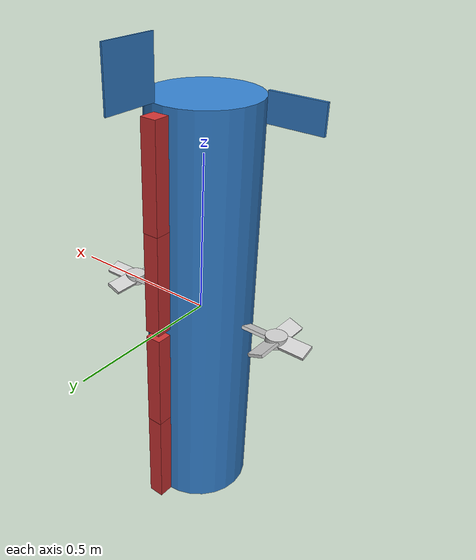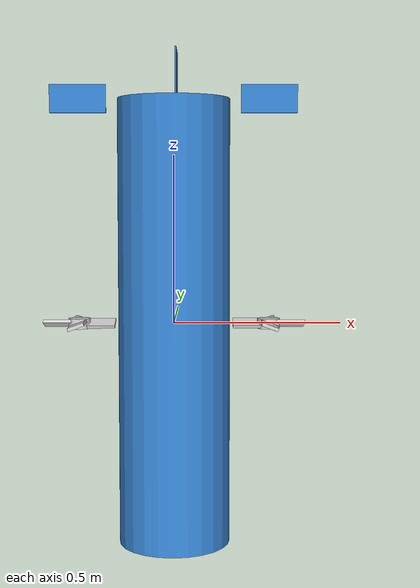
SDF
<?xml version="1.0" ?>
<sdf version="1.6">
  <model name="submarine">

    <!-- 0. ГЛОБАЛЬНАЯ ПОЗИЦИЯ И ОРИЕНТАЦИЯ         -->
    <!-- Поворот на 90° по X и 90° по Y задаёт начальную ориентацию в мире -->
    <pose>0 0 0 1.5707963267948966 1.5707963267948966 0</pose>

    <!-- 1. ОСНОВНОЙ КОРПУС (BODY)                  -->
    <link name="body">
      <pose>0 0 0 0 1.5707963267948966 0</pose>
      <inertial>
        <pose>0.51 0 -0.02 0 0 0</pose>
        <mass>118.2</mass>
        <inertia>
          <ixx>1.64</ixx>
          <iyy>18.33</iyy>
          <izz>18.33</izz>
          <ixy>0</ixy>
          <ixz>0</ixz>
          <iyz>0</iyz>
        </inertia>
        <fluid_added_mass>
          <xx>5.8</xx>
          <yy>116.0</yy>
          <zz>116.0</zz>
          <pp>0.7</pp>
          <qq>3.7</qq>
          <rr>3.7</rr>
        </fluid_added_mass>
      </inertial>

      <visual name="body_visual">
        <geometry>
          <cylinder>
            <radius>0.1666667</radius>
            <length>1.3333333</length>
          </cylinder>
        </geometry>
        <material>
          <ambient>0.2 0.5 0.8 1</ambient>
        </material>
      </visual>

      <collision name="body_collision">
        <geometry>
          <cylinder>
            <radius>0.1666667</radius>
            <length>1.3333333</length>
          </cylinder>
        </geometry>
      </collision>

      <sensor name="imu_sensor" type="imu">
        <always_on>1</always_on>
        <update_rate>100</update_rate>
        <topic>/model/submarine/imu</topic>
      </sensor>

      <sensor name="pressure_sensor" type="air_pressure">
        <always_on>1</always_on>
        <update_rate>50</update_rate>
        <topic>/sub_press</topic>
      </sensor>
    </link>

    <!-- 2. ЛЕВЫЙ ПРОПЕЛЛЕР И ЕГО ФИЗИКА            -->
    <link name="left_propeller">
      <pose>0 0.2833333 0 0 1.5708 0</pose>
      <inertial>
        <mass>0.101</mass>
        <inertia>
          <ixx>0.0000592</ixx>
          <iyy>0.0000592</iyy>
          <izz>0.000117</izz>
          <ixy>0</ixy>
          <ixz>0</ixz>
          <iyz>0</iyz>
        </inertia>
      </inertial>

      <!-- Визуализация лопастей и ступицы -->
      <visual name="lp_cyl"><geometry><cylinder><radius>0.0333</radius><length>0.03</length></cylinder></geometry><material><ambient>0.8 0.8 0.8 1</ambient></material></visual>
      <visual name="lp_b1"><pose>0.057 0 0 -0.349066 0 0</pose><geometry><box><size>0.1 0.05 0.01</size></box></geometry><material><ambient>0.8 0.8 0.8 1</ambient></material></visual>
      <visual name="lp_b2"><pose>-0.057 0 0 0.349066 0 0</pose><geometry><box><size>0.1 0.05 0.01</size></box></geometry><material><ambient>0.8 0.8 0.8 1</ambient></material></visual>
      <visual name="lp_b3"><pose>0 0.057 0 0 -0.349066 0</pose><geometry><box><size>0.05 0.1 0.01</size></box></geometry><material><ambient>0.8 0.8 0.8 1</ambient></material></visual>
      <visual name="lp_b4"><pose>0 -0.057 0 0 0.349066  0</pose><geometry><box><size>0.05 0.1 0.01</size></box></geometry><material><ambient>0.8 0.8 0.8 1</ambient></material></visual>

      <!-- Коллизии лопастей -->
      <collision name="lp_c1"><pose>0.057 0 0 -0.349066 0 0</pose><geometry><box><size>0.1 0.05 0.01</size></box></geometry></collision>
      <collision name="lp_c2"><pose>-0.057 0 0 0.349066 0 0</pose><geometry><box><size>0.1 0.05 0.01</size></box></geometry></collision>
      <collision name="lp_c3"><pose>0 0.057 0 0 -0.349066 0</pose><geometry><box><size>0.05 0.1 0.01</size></box></geometry></collision>
      <collision name="lp_c4"><pose>0 -0.057 0 0 0.349066 0</pose><geometry><box><size>0.05 0.1 0.01</size></box></geometry></collision>
    </link>

    <joint name="left_propeller_joint" type="revolute">
      <parent>body</parent>
      <child>left_propeller</child>
      <axis>
        <xyz>1 0 0</xyz>
        <use_parent_model_frame>1</use_parent_model_frame>
        <limit><lower>-1e12</lower><upper>1e12</upper></limit>
        <dynamics><damping>0.5</damping></dynamics>
      </axis>
    </joint>

    <!-- Плагин создания тяги на суставе -->
    <plugin filename="gz-sim-apply-joint-force-system" name="gz::sim::systems::ApplyJointForce">
      <joint_name>left_propeller_joint</joint_name>
    </plugin>

    <!-- Левый #1: cp=(+X), OK -->
    <plugin filename="gz-sim-lift-drag-system" name="gz::sim::systems::LiftDrag">
      <air_density>1000</air_density>
      <cla>1.2535816618911175</cla>
      <cla_stall>-1.4326647564469914</cla_stall>
      <cda>0.02</cda>
      <cda_stall>1.4326647564469914</cda_stall>
      <alpha_stall>1.396</alpha_stall>
      <area>0.007677</area>
      <upward>0 -0.7071067811865476 -0.7071067811865475</upward>
      <forward>0 -0.7071067811865475 0.7071067811865476</forward>
      <link_name>left_propeller</link_name>
      <cp>0.05833 0 0</cp>
    </plugin>

    <!-- Левый #2: cp=(-Y), OK -->
    <plugin filename="gz-sim-lift-drag-system" name="gz::sim::systems::LiftDrag">
      <air_density>1000</air_density>
      <cla>1.2535816618911175</cla>
      <cla_stall>-1.4326647564469914</cla_stall>
      <cda>0.02</cda>
      <cda_stall>1.4326647564469914</cda_stall>
      <alpha_stall>1.396</alpha_stall>
      <area>0.007677</area>
      <upward>-0.7071067811865475 0 -0.7071067811865476</upward>
      <forward>-0.7071067811865476 0 0.7071067811865475</forward>
      <link_name>left_propeller</link_name>
      <cp>0 -0.05833 0</cp>
    </plugin>

    <!-- Левый #3: cp=(-X), forward ИСПРАВЛЕН -->
    <plugin filename="gz-sim-lift-drag-system" name="gz::sim::systems::LiftDrag">
      <air_density>1000</air_density>
      <cla>1.2535816618911175</cla>
      <cla_stall>-1.4326647564469914</cla_stall>
      <cda>0.02</cda>
      <cda_stall>1.4326647564469914</cda_stall>
      <alpha_stall>1.396</alpha_stall>
      <area>0.007677</area>
      <upward>0 0.7071067811865475 -0.7071067811865476</upward>
      <forward>0 0.7071067811865476 0.7071067811865475</forward>
      <link_name>left_propeller</link_name>
      <cp>-0.05833 0 0</cp>
    </plugin>

    <!-- Левый #4: cp=(+Y), OK -->
    <plugin filename="gz-sim-lift-drag-system" name="gz::sim::systems::LiftDrag">
      <air_density>1000</air_density>
      <cla>1.2535816618911175</cla>
      <cla_stall>-1.4326647564469914</cla_stall>
      <cda>0.02</cda>
      <cda_stall>1.4326647564469914</cda_stall>
      <alpha_stall>1.396</alpha_stall>
      <area>0.007677</area>
      <upward>0.7071067811865476 0 -0.7071067811865475</upward>
      <forward>0.7071067811865475 0 0.7071067811865476</forward>
      <link_name>left_propeller</link_name>
      <cp>0 0.05833 0</cp>
    </plugin>

    <!-- 3. ПРАВЫЙ ПРОПЕЛЛЕР И ЕГО ФИЗИКА           -->
    <link name="right_propeller">
      <pose>0 -0.2833333 0 0 1.5708 0</pose>
      <inertial>
        <mass>0.101</mass>
        <inertia>
          <ixx>0.0000592</ixx>
          <iyy>0.0000592</iyy>
          <izz>0.000117</izz>
          <ixy>0</ixy>
          <ixz>0</ixz>
          <iyz>0</iyz>
        </inertia>
      </inertial>

      <visual name="rp_cyl"><geometry><cylinder><radius>0.0333</radius><length>0.03</length></cylinder></geometry><material><ambient>0.8 0.8 0.8 1</ambient></material></visual>
      <visual name="rp_b1"><pose>0.057 0 0 0.349066 0 0</pose><geometry><box><size>0.1 0.05 0.01</size></box></geometry><material><ambient>0.8 0.8 0.8 1</ambient></material></visual>
      <visual name="rp_b2"><pose>-0.057 0 0 -0.349066 0 0</pose><geometry><box><size>0.1 0.05 0.01</size></box></geometry><material><ambient>0.8 0.8 0.8 1</ambient></material></visual>
      <visual name="rp_b3"><pose>0 0.057 0 0 0.349066 0</pose><geometry><box><size>0.05 0.1 0.01</size></box></geometry><material><ambient>0.8 0.8 0.8 1</ambient></material></visual>
      <visual name="rp_b4"><pose>0 -0.057 0 0 -0.349066 0</pose><geometry><box><size>0.05 0.1 0.01</size></box></geometry><material><ambient>0.8 0.8 0.8 1</ambient></material></visual>

      <collision name="rp_c1"><pose>0.057 0 0 0.349066 0 0</pose><geometry><box><size>0.1 0.05 0.01</size></box></geometry></collision>
      <collision name="rp_c2"><pose>-0.057 0 0 -0.349066 0 0</pose><geometry><box><size>0.1 0.05 0.01</size></box></geometry></collision>
      <collision name="rp_c3"><pose>0 0.057 0 0 0.349066 0</pose><geometry><box><size>0.05 0.1 0.01</size></box></geometry></collision>
      <collision name="rp_c4"><pose>0 -0.057 0 0 -0.349066 0</pose><geometry><box><size>0.05 0.1 0.01</size></box></geometry></collision>
    </link>

    <joint name="right_propeller_joint" type="revolute">
      <parent>body</parent>
      <child>right_propeller</child>
      <axis>
        <xyz>-1 0 0</xyz>
        <use_parent_model_frame>1</use_parent_model_frame>
        <limit><lower>-1e12</lower><upper>1e12</upper></limit>
        <dynamics><damping>0.5</damping></dynamics>
      </axis>
    </joint>

    <plugin filename="gz-sim-apply-joint-force-system" name="gz::sim::systems::ApplyJointForce">
      <joint_name>right_propeller_joint</joint_name>
    </plugin>

        <!-- Гидродинамика 4-х лопастей правого винта -->

    <!-- Правый #1: cp=(+X), OK -->
    <plugin filename="gz-sim-lift-drag-system" name="gz::sim::systems::LiftDrag">
      <air_density>1000</air_density>
      <cla>1.2535816618911175</cla>
      <cla_stall>-1.4326647564469914</cla_stall>
      <cda>0.02</cda>
      <cda_stall>1.4326647564469914</cda_stall>
      <alpha_stall>1.396</alpha_stall>
      <area>0.007677</area>
      <upward>0 0.7071067811865476 -0.7071067811865475</upward>
      <forward>0 0.7071067811865475 0.7071067811865476</forward>
      <link_name>right_propeller</link_name>
      <cp>0.05833 0 0</cp>
    </plugin>

    <!-- Правый #2: cp=(-Y), forward ИСПРАВЛЕН -->
    <plugin filename="gz-sim-lift-drag-system" name="gz::sim::systems::LiftDrag">
      <air_density>1000</air_density>
      <cla>1.2535816618911175</cla>
      <cla_stall>-1.4326647564469914</cla_stall>
      <cda>0.02</cda>
      <cda_stall>1.4326647564469914</cda_stall>
      <alpha_stall>1.396</alpha_stall>
      <area>0.007677</area>
      <upward>0.7071067811865475 0 -0.7071067811865476</upward>
      <forward>0.7071067811865476 0 0.7071067811865475</forward>
      <link_name>right_propeller</link_name>
      <cp>0 -0.05833 0</cp>
    </plugin>

    <!-- Правый #3: cp=(-X), forward ИСПРАВЛЕН -->
    <plugin filename="gz-sim-lift-drag-system" name="gz::sim::systems::LiftDrag">
      <air_density>1000</air_density>
      <cla>1.2535816618911175</cla>
      <cla_stall>-1.4326647564469914</cla_stall>
      <cda>0.02</cda>
      <cda_stall>1.4326647564469914</cda_stall>
      <alpha_stall>1.396</alpha_stall>
      <area>0.007677</area>
      <upward>0 -0.7071067811865475 -0.7071067811865476</upward>
      <forward>0 -0.7071067811865476 0.7071067811865475</forward>
      <link_name>right_propeller</link_name>
      <cp>-0.05833 0 0</cp>
    </plugin>

    <!-- Правый #4: cp=(+Y), forward ИСПРАВЛЕН -->
    <plugin filename="gz-sim-lift-drag-system" name="gz::sim::systems::LiftDrag">
      <air_density>1000</air_density>
      <cla>1.2535816618911175</cla>
      <cla_stall>-1.4326647564469914</cla_stall>
      <cda>0.02</cda>
      <cda_stall>1.4326647564469914</cda_stall>
      <alpha_stall>1.396</alpha_stall>
      <area>0.007677</area>
      <upward>-0.7071067811865476 0 -0.7071067811865475</upward>
      <forward>-0.7071067811865475 0 0.7071067811865476</forward>
      <link_name>right_propeller</link_name>
      <cp>0 0.05833 0</cp>
    </plugin>

    <!-- 4. РУЛИ УПРАВЛЕНИЯ (CONTROL SURFACES)      -->

    <!-- Горизонтальный правый руль -->
    <link name="horizontal_rudder_right">
      <pose>-0.6666667 0.2833333 0 1.5708 0 1.5708</pose>
      <inertial><mass>0.02315</mass><inertia><ixx>0.00000129</ixx><iyy>0.00000129</iyy><izz>0.00000129</izz><ixy>0</ixy><ixz>0</ixz><iyz>0</iyz></inertia></inertial>
      <visual name="hrr_v"><geometry><box><size>0.1666667 0.0083333 0.0833333</size></box></geometry><material><ambient>0.2 0.5 0.8 1</ambient></material></visual>
      <collision name="hrr_c"><geometry><box><size>0.05 0.0083333 0.0833333</size></box></geometry></collision>
    </link>
    <joint name="horizontal_rudder_right_joint" type="revolute">
      <parent>body</parent><child>horizontal_rudder_right</child>
      <axis><xyz>1 0 0</xyz><limit><lower>-0.785</lower><upper>0.785</upper><effort>10</effort><velocity>1.0</velocity></limit><dynamics><damping>3.0</damping></dynamics></axis>
    </joint>
    <plugin filename="gz-sim-joint-position-controller-system" name="gz::sim::systems::JointPositionController">
      <joint_name>horizontal_rudder_right_joint</joint_name>
      <topic>/model/submarine/joint/horizontal_rudder_right/cmd_position</topic>
      <p_gain>10</p_gain>
    </plugin>
    <plugin filename="gz-sim-lift-drag-system" name="gz::sim::systems::LiftDrag">
      <air_density>1000</air_density><link_name>horizontal_rudder_right</link_name>

      <area>0.014</area>
      <cla>2.5</cla>
      <cla_stall>-0.5</cla_stall>
      <cda>0.02</cda>
      <cda_stall>1.0</cda_stall>
      <alpha_stall>1.2</alpha_stall><a0>0</a0>
      <upward>0 1 0</upward><forward>0 0 1</forward>
      <cp>-0.6666667 0.2833333 0</cp>
    </plugin>

    <!-- Горизонтальный левый руль -->
    <link name="horizontal_rudder_left">
      <pose>-0.6666667 -0.2833333 0 1.5708 0 1.5708</pose>
      <inertial><mass>0.02315</mass><inertia><ixx>0.00000129</ixx><iyy>0.00000129</iyy><izz>0.00000129</izz><ixy>0</ixy><ixz>0</ixz><iyz>0</iyz></inertia></inertial>
      <visual name="hrl_v"><geometry><box><size>0.1666667 0.0083333 0.0833333</size></box></geometry><material><ambient>0.2 0.5 0.8 1</ambient></material></visual>
      <collision name="hrl_c"><geometry><box><size>0.05 0.0083333 0.0833333</size></box></geometry></collision>
    </link>
    <joint name="horizontal_rudder_left_joint" type="revolute">
      <parent>body</parent><child>horizontal_rudder_left</child>
      <axis><xyz>1 0 0</xyz><limit><lower>-0.785</lower><upper>0.785</upper><effort>10</effort><velocity>1.0</velocity></limit><dynamics><damping>3.0</damping></dynamics></axis>
    </joint>
    <plugin filename="gz-sim-joint-position-controller-system" name="gz::sim::systems::JointPositionController">
      <joint_name>horizontal_rudder_left_joint</joint_name>
      <topic>/model/submarine/joint/horizontal_rudder_left/cmd_position</topic>
      <p_gain>10</p_gain>
    </plugin>
    <plugin filename="gz-sim-lift-drag-system" name="gz::sim::systems::LiftDrag">
      <air_density>1000</air_density><link_name>horizontal_rudder_left</link_name>
      <area>0.014</area>
      <cla>2.5</cla>
      <cla_stall>-0.5</cla_stall>
      <cda>0.02</cda>
      <cda_stall>1.0</cda_stall>
      <alpha_stall>1.2</alpha_stall><a0>0</a0>
      <upward>0 1 0</upward><forward>0 0 1</forward>
      <cp>-0.6666667 -0.2833333 0</cp>
    </plugin>

    <!-- Вертикальный руль -->
    <link name="vertical_rudder">
      <pose>-0.7666667 0 -0.2833333 1.5708 1.5708 0</pose>
      <inertial><mass>0.02315</mass><inertia><ixx>0.00000129</ixx><iyy>0.00000129</iyy><izz>0.00000129</izz><ixy>0</ixy><ixz>0</ixz><iyz>0</iyz></inertia></inertial>
      <visual name="vr_v"><geometry><box><size>0.1666667 0.1666667 0.005</size></box></geometry><material><ambient>0.2 0.5 0.8 1</ambient></material></visual>
      <collision name="vr_c"><geometry><box><size>0.0333333 0.0666667 0.005</size></box></geometry></collision>
    </link>
    <joint name="vertical_rudder_joint" type="revolute">
      <parent>body</parent><child>vertical_rudder</child>
      <axis><xyz>1 0 0</xyz><limit><lower>-0.785</lower><upper>0.785</upper><effort>10</effort><velocity>1.0</velocity></limit><dynamics><damping>3.0</damping></dynamics></axis>
    </joint>
    <plugin filename="gz-sim-joint-position-controller-system" name="gz::sim::systems::JointPositionController">
      <joint_name>vertical_rudder_joint</joint_name>
      <topic>/model/submarine/joint/vertical_rudder/cmd_position</topic>
      <p_gain>10</p_gain>
    </plugin>
    <plugin filename="gz-sim-lift-drag-system" name="gz::sim::systems::LiftDrag">
      <air_density>1000</air_density><link_name>vertical_rudder</link_name>
      <area>0.028</area>
      <cla>2.5</cla>
      <cla_stall>-0.5</cla_stall>
      <cda>0.02</cda>
      <cda_stall>1.0</cda_stall>
      <alpha_stall>1.2</alpha_stall><a0>0</a0>
      <upward>0 0 1</upward><forward>0 1 0</forward>
      <cp>-0.7666667 0 -0.2833333</cp>
    </plugin>

    <!-- 5. БАЛЛАСТЫ (BALLAST)                      -->
    <link name="ballast_1">
      <pose>0.49 0 -0.2 0 0 0</pose>
      <inertial>
        <mass>0.1</mass>
        <inertia><ixx>0.0001</ixx><iyy>0.0001</iyy><izz>0.0001</izz></inertia>
      </inertial>
      <visual name="b1_v"><geometry><box><size>0.32 0.05 0.05</size></box></geometry><material><ambient>0.8 0.2 0.2 1</ambient></material></visual>
      <collision name="b1_c"><geometry><box><size>0.32 0.05 0.05</size></box></geometry></collision>
    </link>
    <joint name="ballast_1_joint" type="fixed"><parent>body</parent><child>ballast_1</child></joint>

    <link name="ballast_2">
      <pose>0.17 0 -0.2 0 0 0</pose>
      <inertial>
        <mass>0.1</mass>
        <inertia><ixx>0.0001</ixx><iyy>0.0001</iyy><izz>0.0001</izz></inertia>
      </inertial>
      <visual name="b2_v"><geometry><box><size>0.32 0.05 0.05</size></box></geometry><material><ambient>0.8 0.2 0.2 1</ambient></material></visual>
      <collision name="b2_c"><geometry><box><size>0.32 0.05 0.05</size></box></geometry></collision>
    </link>
    <joint name="ballast_2_joint" type="fixed"><parent>body</parent><child>ballast_2</child></joint>

    <link name="ballast_3">
      <pose>-0.17 0 -0.2 0 0 0</pose>
      <inertial>
        <mass>0.1</mass>
        <inertia><ixx>0.0001</ixx><iyy>0.0001</iyy><izz>0.0001</izz></inertia>
      </inertial>
      <visual name="b3_v"><geometry><box><size>0.32 0.05 0.05</size></box></geometry><material><ambient>0.8 0.2 0.2 1</ambient></material></visual>
      <collision name="b3_c"><geometry><box><size>0.32 0.05 0.05</size></box></geometry></collision>
    </link>
    <joint name="ballast_3_joint" type="fixed"><parent>body</parent><child>ballast_3</child></joint>

    <link name="ballast_4">
      <pose>-0.49 0 -0.2 0 0 0</pose>
      <inertial>
        <mass>0.1</mass>
        <inertia><ixx>0.0001</ixx><iyy>0.0001</iyy><izz>0.0001</izz></inertia>
      </inertial>
      <visual name="b4_v"><geometry><box><size>0.32 0.05 0.05</size></box></geometry><material><ambient>0.8 0.2 0.2 1</ambient></material></visual>
      <collision name="b4_c"><geometry><box><size>0.32 0.05 0.05</size></box></geometry></collision>
    </link>
    <joint name="ballast_4_joint" type="fixed"><parent>body</parent><child>ballast_4</child></joint>

    <plugin filename="gz-sim-buoyancy-engine-system" name="gz::sim::systems::BuoyancyEngine">
      <link_name>ballast_1</link_name>
      <min_volume>0.0</min_volume>
      <max_volume>0.003</max_volume>
    </plugin>

    <plugin filename="gz-sim-buoyancy-engine-system" name="gz::sim::systems::BuoyancyEngine">
      <link_name>ballast_2</link_name>
      <min_volume>0.0</min_volume>
      <max_volume>0.003</max_volume>
    </plugin>

    <plugin filename="gz-sim-buoyancy-engine-system" name="gz::sim::systems::BuoyancyEngine">
      <link_name>ballast_3</link_name>
      <min_volume>0.0</min_volume>
      <max_volume>0.003</max_volume>
    </plugin>

    <plugin filename="gz-sim-buoyancy-engine-system" name="gz::sim::systems::BuoyancyEngine">
      <link_name>ballast_4</link_name>
      <min_volume>0.0</min_volume>
      <max_volume>0.003</max_volume>
    </plugin>

    <!-- 6. СИСТЕМНЫЕ ПЛАГИНЫ                       -->
    <plugin filename="gz-sim-odometry-publisher-system" name="gz::sim::systems::OdometryPublisher">
      <odom_frame>world</odom_frame>
      <robot_base_frame>submarine/body</robot_base_frame>
      <odom_topic>/model/submarine/odometry</odom_topic>
      <odom_publish_frequency>50</odom_publish_frequency>
    </plugin>

    <plugin filename="gz-sim-hydrodynamics-system" name="gz::sim::systems::Hydrodynamics">
      <link_name>body</link_name>

      <!-- Продольное (surge): R=0.167, S_front=0.087, Cd=0.82 + надстройки ×1.7 -->
      <xU>-4.0</xU>
      <xUabsU>-44.0</xUabsU>
      <!-- Поперечное (sway): S_lat=0.444, Cd=1.1 + надстройки ×1.3 -->
      <yV>-15.0</yV>
      <yVabsV>-250.0</yVabsV>
      <!-- Вертикальное (heave): аналогично sway -->
      <zW>-15.0</zW>
      <zWabsW>-250.0</zWabsW>
      <!-- Вращательное демпфирование -->
      <kP>-5.0</kP>
      <kPabsP>-100.0</kPabsP>
      <mQ>-5.0</mQ>
      <mQabsQ>-100.0</mQabsQ>
      <nR>-5.0</nR>
      <nRabsR>-100.0</nRabsR>
    </plugin>

    <plugin filename="gz-sim-hydrodynamics-system" name="gz::sim::systems::Hydrodynamics">
      <link_name>horizontal_rudder_right</link_name>
      <xU>-0.2</xU>         <xUabsU>-0.5</xUabsU>
      <yV>-0.4</yV>         <yVabsV>-1.0</yVabsV>
      <zW>-0.4</zW>         <zWabsW>-1.0</zWabsW>
      <kP>-0.02</kP>        <kPabsP>-0.05</kPabsP>
      <mQ>-0.02</mQ>        <mQabsQ>-0.05</mQabsQ>
      <nR>-0.02</nR>        <nRabsR>-0.05</nRabsR>
    </plugin>

    <plugin filename="gz-sim-hydrodynamics-system" name="gz::sim::systems::Hydrodynamics">
      <link_name>horizontal_rudder_left</link_name>
      <xU>-0.2</xU>         <xUabsU>-0.5</xUabsU>
      <yV>-0.4</yV>         <yVabsV>-1.0</yVabsV>
      <zW>-0.4</zW>         <zWabsW>-1.0</zWabsW>
      <kP>-0.02</kP>        <kPabsP>-0.05</kPabsP>
      <mQ>-0.02</mQ>        <mQabsQ>-0.05</mQabsQ>
      <nR>-0.02</nR>        <nRabsR>-0.05</nRabsR>
    </plugin>

    <plugin filename="gz-sim-hydrodynamics-system" name="gz::sim::systems::Hydrodynamics">
      <link_name>vertical_rudder</link_name>
      <xU>-0.2</xU>         <xUabsU>-0.5</xUabsU>
      <yV>-0.4</yV>         <yVabsV>-1.0</yVabsV>
      <zW>-0.4</zW>         <zWabsW>-1.0</zWabsW>
      <kP>-0.02</kP>        <kPabsP>-0.05</kPabsP>
      <mQ>-0.02</mQ>        <mQabsQ>-0.05</mQabsQ>
      <nR>-0.02</nR>        <nRabsR>-0.05</nRabsR>
    </plugin>

  </model>
</sdf>
